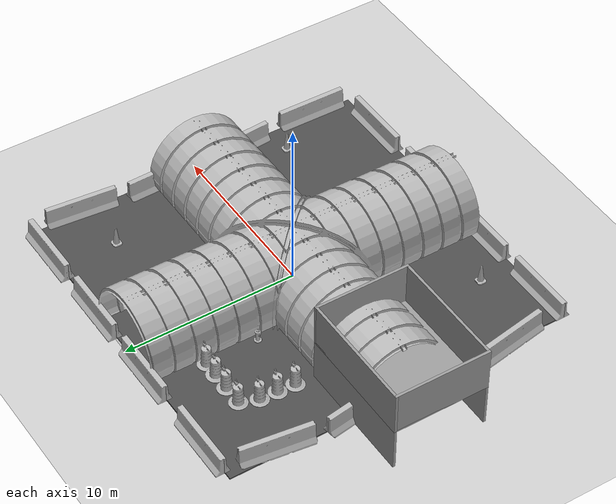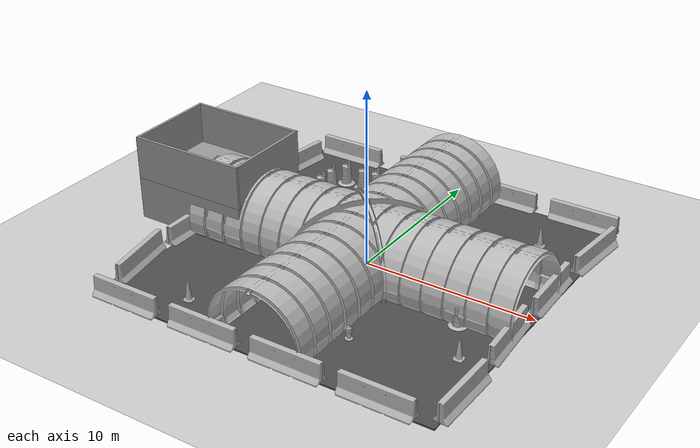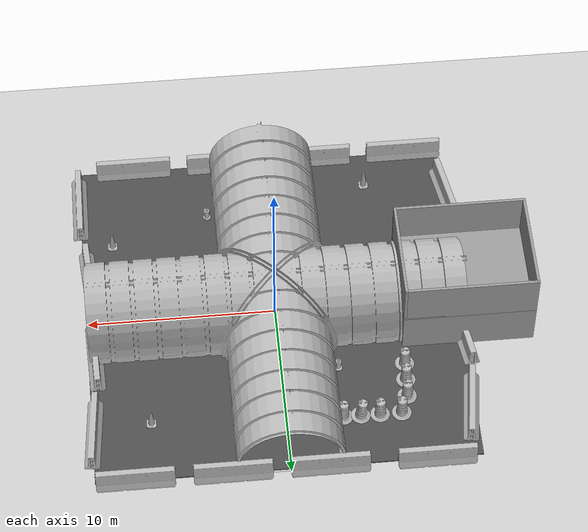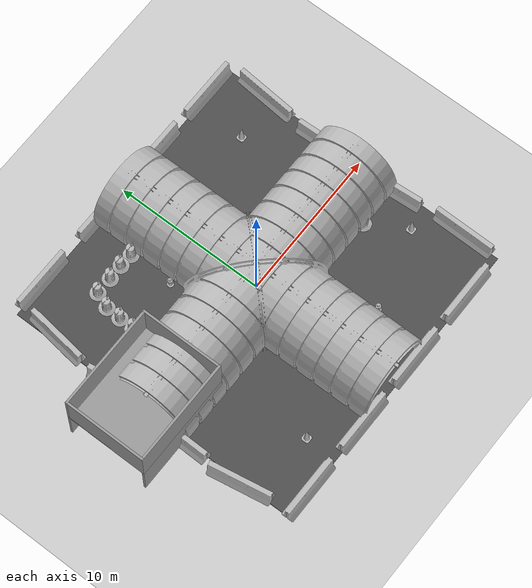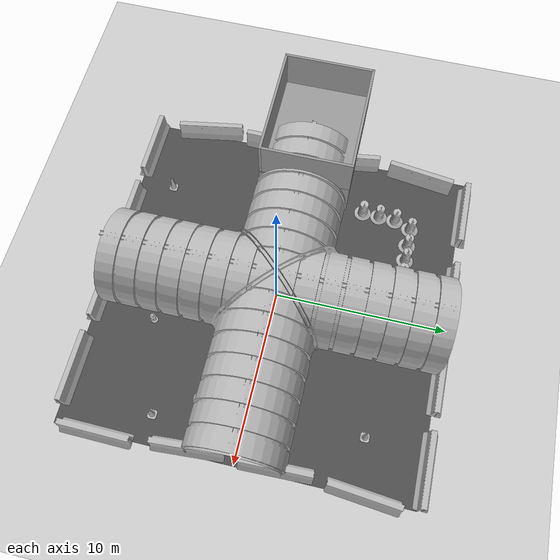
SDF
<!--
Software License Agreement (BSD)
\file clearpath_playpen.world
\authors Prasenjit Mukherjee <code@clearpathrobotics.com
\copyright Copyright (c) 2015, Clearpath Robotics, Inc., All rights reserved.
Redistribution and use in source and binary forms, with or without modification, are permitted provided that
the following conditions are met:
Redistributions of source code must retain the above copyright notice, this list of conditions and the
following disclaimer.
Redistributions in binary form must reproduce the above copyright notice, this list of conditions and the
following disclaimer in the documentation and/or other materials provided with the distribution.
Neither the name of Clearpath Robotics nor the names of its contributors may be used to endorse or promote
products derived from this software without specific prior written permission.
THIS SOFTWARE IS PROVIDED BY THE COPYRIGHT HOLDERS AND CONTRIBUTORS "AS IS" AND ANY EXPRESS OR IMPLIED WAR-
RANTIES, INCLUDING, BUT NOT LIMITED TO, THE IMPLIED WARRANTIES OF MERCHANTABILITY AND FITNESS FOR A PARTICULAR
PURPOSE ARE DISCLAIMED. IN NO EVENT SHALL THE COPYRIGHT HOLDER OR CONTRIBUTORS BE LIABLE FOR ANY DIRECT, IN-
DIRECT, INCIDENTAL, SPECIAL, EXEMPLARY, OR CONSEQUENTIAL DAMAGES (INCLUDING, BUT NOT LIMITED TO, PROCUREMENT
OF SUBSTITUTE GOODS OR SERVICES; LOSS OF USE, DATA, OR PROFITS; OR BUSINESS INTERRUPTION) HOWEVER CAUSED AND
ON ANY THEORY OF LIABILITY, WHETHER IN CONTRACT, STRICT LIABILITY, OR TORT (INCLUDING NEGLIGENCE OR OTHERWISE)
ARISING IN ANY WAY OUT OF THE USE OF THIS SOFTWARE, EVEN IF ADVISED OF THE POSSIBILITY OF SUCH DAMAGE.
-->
<sdf version="1.4">
 <world name="default">
  <light name="sun" type="directional">
   <pose>0 0 10 0 -0 0</pose>
   <diffuse>0.8 0.8 0.8 1</diffuse>
   <specular>0.2 0.2 0.2 1</specular>
   <attenuation>
    <range>1000</range>
    <constant>0.9</constant>
    <linear>0.01</linear>
    <quadratic>0.001</quadratic>
   </attenuation>
   <direction>-0.5 0.1 -0.9</direction>
  </light>
  <include><uri>model://tunnel_tile_1</uri></include>
  <include><uri>model://entrance</uri><pose>-10 0 0 0 0 0</pose></include>
  <model name="ground_plane">
   <static>1</static>
   <link name="link">
    <collision name="collision">
     <geometry><plane><normal>0 0 1</normal><size>100 100</size></plane></geometry>
     <surface><friction><ode><mu>100</mu><mu2>50</mu2></ode></friction></surface>
    </collision>
    <visual name="visual">
     <cast_shadows>0</cast_shadows>
     <geometry><plane><normal>0 0 1</normal><size>100 100</size></plane></geometry>
     <material>
      <script><uri>file://media/materials/scripts/gazebo.material</uri><name>Gazebo/Grey</name></script>
     </material>
    </visual>
    <velocity_decay><linear>0</linear><angular>0</angular></velocity_decay>
   </link>
  </model>
  <physics type="ode">
   <max_step_size>0.01</max_step_size>
   <real_time_factor>1</real_time_factor>
   <real_time_update_rate>100</real_time_update_rate>
   <gravity>0 0 -9.8</gravity>
  </physics>
  <scene><ambient>0.4 0.4 0.4 1</ambient><background>0.7 0.7 0.7 1</background><shadows>1</shadows></scene>
  <model name="jersey_barrier">
   <static>1</static>
   <link name="link">
    <visual name="visual">
     <geometry><mesh><uri>model://jersey_barrier/meshes/jersey_barrier.dae</uri></mesh></geometry>
    </visual>
    <collision name="upright">
     <pose>0 0 0.5715 0 -0 0</pose>
     <geometry><box><size>4.06542 0.3063 1.143</size></box></geometry>
    </collision>
    <collision name="base">
     <pose>0 0 0.032258 0 -0 0</pose>
     <geometry><box><size>4.06542 0.8107 0.064516</size></box></geometry>
    </collision>
    <collision name="base2">
     <pose>0 0 0.1 0 -0 0</pose>
     <geometry><box><size>4.06542 0.65 0.1</size></box></geometry>
    </collision>
    <collision name="base3">
     <pose>0 0 0.2 0 -0 0</pose>
     <geometry><box><size>4.06542 0.5 0.1</size></box></geometry>
    </collision>
    <collision name="left-angle">
     <pose>0 -0.224 0.2401 0.9 -0 0</pose>
     <geometry><box><size>4.06542 0.5 0.064516</size></box></geometry>
    </collision>
    <collision name="right-angle">
     <pose>0 0.224 0.2401 -0.9 0 0</pose>
     <geometry><box><size>4.06542 0.5 0.064516</size></box></geometry>
    </collision>
    <velocity_decay><linear>0</linear><angular>0</angular></velocity_decay>
   </link>
   <pose>-8 -10 0 0 -0 0</pose>
  </model>
  <model name="jersey_barrier_0">
   <static>1</static>
   <link name="link">
    <visual name="visual">
     <geometry><mesh><uri>model://jersey_barrier/meshes/jersey_barrier.dae</uri></mesh></geometry>
    </visual>
    <collision name="upright">
     <pose>0 0 0.5715 0 -0 0</pose>
     <geometry><box><size>4.06542 0.3063 1.143</size></box></geometry>
    </collision>
    <collision name="base">
     <pose>0 0 0.032258 0 -0 0</pose>
     <geometry><box><size>4.06542 0.8107 0.064516</size></box></geometry>
    </collision>
    <collision name="base2">
     <pose>0 0 0.1 0 -0 0</pose>
     <geometry><box><size>4.06542 0.65 0.1</size></box></geometry>
    </collision>
    <collision name="base3">
     <pose>0 0 0.2 0 -0 0</pose>
     <geometry><box><size>4.06542 0.5 0.1</size></box></geometry>
    </collision>
    <collision name="left-angle">
     <pose>0 -0.224 0.2401 0.9 -0 0</pose>
     <geometry><box><size>4.06542 0.5 0.064516</size></box></geometry>
    </collision>
    <collision name="right-angle">
     <pose>0 0.224 0.2401 -0.9 0 0</pose>
     <geometry><box><size>4.06542 0.5 0.064516</size></box></geometry>
    </collision>
    <velocity_decay><linear>0</linear><angular>0</angular></velocity_decay>
   </link>
   <pose>-3 -10 0 0 -0 0</pose>
  </model>
  <model name="jersey_barrier_1">
   <static>1</static>
   <link name="link">
    <visual name="visual">
     <geometry><mesh><uri>model://jersey_barrier/meshes/jersey_barrier.dae</uri></mesh></geometry>
    </visual>
    <collision name="upright">
     <pose>0 0 0.5715 0 -0 0</pose>
     <geometry><box><size>4.06542 0.3063 1.143</size></box></geometry>
    </collision>
    <collision name="base">
     <pose>0 0 0.032258 0 -0 0</pose>
     <geometry><box><size>4.06542 0.8107 0.064516</size></box></geometry>
    </collision>
    <collision name="base2">
     <pose>0 0 0.1 0 -0 0</pose>
     <geometry><box><size>4.06542 0.65 0.1</size></box></geometry>
    </collision>
    <collision name="base3">
     <pose>0 0 0.2 0 -0 0</pose>
     <geometry><box><size>4.06542 0.5 0.1</size></box></geometry>
    </collision>
    <collision name="left-angle">
     <pose>0 -0.224 0.2401 0.9 -0 0</pose>
     <geometry><box><size>4.06542 0.5 0.064516</size></box></geometry>
    </collision>
    <collision name="right-angle">
     <pose>0 0.224 0.2401 -0.9 0 0</pose>
     <geometry><box><size>4.06542 0.5 0.064516</size></box></geometry>
    </collision>
    <velocity_decay><linear>0</linear><angular>0</angular></velocity_decay>
   </link>
   <pose>2 -10 0 0 -0 0</pose>
  </model>
  <model name="jersey_barrier_2">
   <static>1</static>
   <link name="link">
    <visual name="visual">
     <geometry><mesh><uri>model://jersey_barrier/meshes/jersey_barrier.dae</uri></mesh></geometry>
    </visual>
    <collision name="upright">
     <pose>0 0 0.5715 0 -0 0</pose>
     <geometry><box><size>4.06542 0.3063 1.143</size></box></geometry>
    </collision>
    <collision name="base">
     <pose>0 0 0.032258 0 -0 0</pose>
     <geometry><box><size>4.06542 0.8107 0.064516</size></box></geometry>
    </collision>
    <collision name="base2">
     <pose>0 0 0.1 0 -0 0</pose>
     <geometry><box><size>4.06542 0.65 0.1</size></box></geometry>
    </collision>
    <collision name="base3">
     <pose>0 0 0.2 0 -0 0</pose>
     <geometry><box><size>4.06542 0.5 0.1</size></box></geometry>
    </collision>
    <collision name="left-angle">
     <pose>0 -0.224 0.2401 0.9 -0 0</pose>
     <geometry><box><size>4.06542 0.5 0.064516</size></box></geometry>
    </collision>
    <collision name="right-angle">
     <pose>0 0.224 0.2401 -0.9 0 0</pose>
     <geometry><box><size>4.06542 0.5 0.064516</size></box></geometry>
    </collision>
    <velocity_decay><linear>0</linear><angular>0</angular></velocity_decay>
   </link>
   <pose>7 -10 0 0 -0 0</pose>
  </model>
  <model name="jersey_barrier_3">
   <static>1</static>
   <link name="link">
    <visual name="visual">
     <geometry><mesh><uri>model://jersey_barrier/meshes/jersey_barrier.dae</uri></mesh></geometry>
    </visual>
    <collision name="upright">
     <pose>0 0 0.5715 0 -0 0</pose>
     <geometry><box><size>4.06542 0.3063 1.143</size></box></geometry>
    </collision>
    <collision name="base">
     <pose>0 0 0.032258 0 -0 0</pose>
     <geometry><box><size>4.06542 0.8107 0.064516</size></box></geometry>
    </collision>
    <collision name="base2">
     <pose>0 0 0.1 0 -0 0</pose>
     <geometry><box><size>4.06542 0.65 0.1</size></box></geometry>
    </collision>
    <collision name="base3">
     <pose>0 0 0.2 0 -0 0</pose>
     <geometry><box><size>4.06542 0.5 0.1</size></box></geometry>
    </collision>
    <collision name="left-angle">
     <pose>0 -0.224 0.2401 0.9 -0 0</pose>
     <geometry><box><size>4.06542 0.5 0.064516</size></box></geometry>
    </collision>
    <collision name="right-angle">
     <pose>0 0.224 0.2401 -0.9 0 0</pose>
     <geometry><box><size>4.06542 0.5 0.064516</size></box></geometry>
    </collision>
    <velocity_decay><linear>0</linear><angular>0</angular></velocity_decay>
   </link>
   <pose>-7.50675 10 0 0 -0 0</pose>
  </model>
  <model name="jersey_barrier_4">
   <static>1</static>
   <link name="link">
    <visual name="visual">
     <geometry><mesh><uri>model://jersey_barrier/meshes/jersey_barrier.dae</uri></mesh></geometry>
    </visual>
    <collision name="upright">
     <pose>0 0 0.5715 0 -0 0</pose>
     <geometry><box><size>4.06542 0.3063 1.143</size></box></geometry>
    </collision>
    <collision name="base">
     <pose>0 0 0.032258 0 -0 0</pose>
     <geometry><box><size>4.06542 0.8107 0.064516</size></box></geometry>
    </collision>
    <collision name="base2">
     <pose>0 0 0.1 0 -0 0</pose>
     <geometry><box><size>4.06542 0.65 0.1</size></box></geometry>
    </collision>
    <collision name="base3">
     <pose>0 0 0.2 0 -0 0</pose>
     <geometry><box><size>4.06542 0.5 0.1</size></box></geometry>
    </collision>
    <collision name="left-angle">
     <pose>0 -0.224 0.2401 0.9 -0 0</pose>
     <geometry><box><size>4.06542 0.5 0.064516</size></box></geometry>
    </collision>
    <collision name="right-angle">
     <pose>0 0.224 0.2401 -0.9 0 0</pose>
     <geometry><box><size>4.06542 0.5 0.064516</size></box></geometry>
    </collision>
    <velocity_decay><linear>0</linear><angular>0</angular></velocity_decay>
   </link>
   <pose>-2 10 0 0 -0 0</pose>
  </model>
  <model name="jersey_barrier_5">
   <static>1</static>
   <link name="link">
    <visual name="visual">
     <geometry><mesh><uri>model://jersey_barrier/meshes/jersey_barrier.dae</uri></mesh></geometry>
    </visual>
    <collision name="upright">
     <pose>0 0 0.5715 0 -0 0</pose>
     <geometry><box><size>4.06542 0.3063 1.143</size></box></geometry>
    </collision>
    <collision name="base">
     <pose>0 0 0.032258 0 -0 0</pose>
     <geometry><box><size>4.06542 0.8107 0.064516</size></box></geometry>
    </collision>
    <collision name="base2">
     <pose>0 0 0.1 0 -0 0</pose>
     <geometry><box><size>4.06542 0.65 0.1</size></box></geometry>
    </collision>
    <collision name="base3">
     <pose>0 0 0.2 0 -0 0</pose>
     <geometry><box><size>4.06542 0.5 0.1</size></box></geometry>
    </collision>
    <collision name="left-angle">
     <pose>0 -0.224 0.2401 0.9 -0 0</pose>
     <geometry><box><size>4.06542 0.5 0.064516</size></box></geometry>
    </collision>
    <collision name="right-angle">
     <pose>0 0.224 0.2401 -0.9 0 0</pose>
     <geometry><box><size>4.06542 0.5 0.064516</size></box></geometry>
    </collision>
    <velocity_decay><linear>0</linear><angular>0</angular></velocity_decay>
   </link>
   <pose>3 10 0 0 -0 0</pose>
  </model>
  <model name="jersey_barrier_6">
   <static>1</static>
   <link name="link">
    <visual name="visual">
     <geometry><mesh><uri>model://jersey_barrier/meshes/jersey_barrier.dae</uri></mesh></geometry>
    </visual>
    <collision name="upright">
     <pose>0 0 0.5715 0 -0 0</pose>
     <geometry><box><size>4.06542 0.3063 1.143</size></box></geometry>
    </collision>
    <collision name="base">
     <pose>0 0 0.032258 0 -0 0</pose>
     <geometry><box><size>4.06542 0.8107 0.064516</size></box></geometry>
    </collision>
    <collision name="base2">
     <pose>0 0 0.1 0 -0 0</pose>
     <geometry><box><size>4.06542 0.65 0.1</size></box></geometry>
    </collision>
    <collision name="base3">
     <pose>0 0 0.2 0 -0 0</pose>
     <geometry><box><size>4.06542 0.5 0.1</size></box></geometry>
    </collision>
    <collision name="left-angle">
     <pose>0 -0.224 0.2401 0.9 -0 0</pose>
     <geometry><box><size>4.06542 0.5 0.064516</size></box></geometry>
    </collision>
    <collision name="right-angle">
     <pose>0 0.224 0.2401 -0.9 0 0</pose>
     <geometry><box><size>4.06542 0.5 0.064516</size></box></geometry>
    </collision>
    <velocity_decay><linear>0</linear><angular>0</angular></velocity_decay>
   </link>
   <pose>8 10 0 0 -0 0</pose>
  </model>
  <model name="jersey_barrier_7">
   <static>1</static>
   <link name="link">
    <visual name="visual">
     <geometry><mesh><uri>model://jersey_barrier/meshes/jersey_barrier.dae</uri></mesh></geometry>
    </visual>
    <collision name="upright">
     <pose>0 0 0.5715 0 -0 0</pose>
     <geometry><box><size>4.06542 0.3063 1.143</size></box></geometry>
    </collision>
    <collision name="base">
     <pose>0 0 0.032258 0 -0 0</pose>
     <geometry><box><size>4.06542 0.8107 0.064516</size></box></geometry>
    </collision>
    <collision name="base2">
     <pose>0 0 0.1 0 -0 0</pose>
     <geometry><box><size>4.06542 0.65 0.1</size></box></geometry>
    </collision>
    <collision name="base3">
     <pose>0 0 0.2 0 -0 0</pose>
     <geometry><box><size>4.06542 0.5 0.1</size></box></geometry>
    </collision>
    <collision name="left-angle">
     <pose>0 -0.224 0.2401 0.9 -0 0</pose>
     <geometry><box><size>4.06542 0.5 0.064516</size></box></geometry>
    </collision>
    <collision name="right-angle">
     <pose>0 0.224 0.2401 -0.9 0 0</pose>
     <geometry><box><size>4.06542 0.5 0.064516</size></box></geometry>
    </collision>
    <velocity_decay><linear>0</linear><angular>0</angular></velocity_decay>
   </link>
   <pose>9.74902 -2.57759 0 0 -0 1.64</pose>
  </model>
  <model name="jersey_barrier_8">
   <static>1</static>
   <link name="link">
    <visual name="visual">
     <geometry><mesh><uri>model://jersey_barrier/meshes/jersey_barrier.dae</uri></mesh></geometry>
    </visual>
    <collision name="upright">
     <pose>0 0 0.5715 0 -0 0</pose>
     <geometry><box><size>4.06542 0.3063 1.143</size></box></geometry>
    </collision>
    <collision name="base">
     <pose>0 0 0.032258 0 -0 0</pose>
     <geometry><box><size>4.06542 0.8107 0.064516</size></box></geometry>
    </collision>
    <collision name="base2">
     <pose>0 0 0.1 0 -0 0</pose>
     <geometry><box><size>4.06542 0.65 0.1</size></box></geometry>
    </collision>
    <collision name="base3">
     <pose>0 0 0.2 0 -0 0</pose>
     <geometry><box><size>4.06542 0.5 0.1</size></box></geometry>
    </collision>
    <collision name="left-angle">
     <pose>0 -0.224 0.2401 0.9 -0 0</pose>
     <geometry><box><size>4.06542 0.5 0.064516</size></box></geometry>
    </collision>
    <collision name="right-angle">
     <pose>0 0.224 0.2401 -0.9 0 0</pose>
     <geometry><box><size>4.06542 0.5 0.064516</size></box></geometry>
    </collision>
    <velocity_decay><linear>0</linear><angular>0</angular></velocity_decay>
   </link>
   <pose>9.70141 2.24369 0 0 -0 1.6</pose>
  </model>
  <model name="jersey_barrier_9">
   <static>1</static>
   <link name="link">
    <visual name="visual">
     <geometry><mesh><uri>model://jersey_barrier/meshes/jersey_barrier.dae</uri></mesh></geometry>
    </visual>
    <collision name="upright">
     <pose>0 0 0.5715 0 -0 0</pose>
     <geometry><box><size>4.06542 0.3063 1.143</size></box></geometry>
    </collision>
    <collision name="base">
     <pose>0 0 0.032258 0 -0 0</pose>
     <geometry><box><size>4.06542 0.8107 0.064516</size></box></geometry>
    </collision>
    <collision name="base2">
     <pose>0 0 0.1 0 -0 0</pose>
     <geometry><box><size>4.06542 0.65 0.1</size></box></geometry>
    </collision>
    <collision name="base3">
     <pose>0 0 0.2 0 -0 0</pose>
     <geometry><box><size>4.06542 0.5 0.1</size></box></geometry>
    </collision>
    <collision name="left-angle">
     <pose>0 -0.224 0.2401 0.9 -0 0</pose>
     <geometry><box><size>4.06542 0.5 0.064516</size></box></geometry>
    </collision>
    <collision name="right-angle">
     <pose>0 0.224 0.2401 -0.9 0 0</pose>
     <geometry><box><size>4.06542 0.5 0.064516</size></box></geometry>
    </collision>
    <velocity_decay><linear>0</linear><angular>0</angular></velocity_decay>
   </link>
   <pose>-10.0607 -6.69856 0 0 0 -1.4</pose>
  </model>
  <model name="jersey_barrier_10">
   <static>1</static>
   <link name="link">
    <visual name="visual">
     <geometry><mesh><uri>model://jersey_barrier/meshes/jersey_barrier.dae</uri></mesh></geometry>
    </visual>
    <collision name="upright">
     <pose>0 0 0.5715 0 -0 0</pose>
     <geometry><box><size>4.06542 0.3063 1.143</size></box></geometry>
    </collision>
    <collision name="base">
     <pose>0 0 0.032258 0 -0 0</pose>
     <geometry><box><size>4.06542 0.8107 0.064516</size></box></geometry>
    </collision>
    <collision name="base2">
     <pose>0 0 0.1 0 -0 0</pose>
     <geometry><box><size>4.06542 0.65 0.1</size></box></geometry>
    </collision>
    <collision name="base3">
     <pose>0 0 0.2 0 -0 0</pose>
     <geometry><box><size>4.06542 0.5 0.1</size></box></geometry>
    </collision>
    <collision name="left-angle">
     <pose>0 -0.224 0.2401 0.9 -0 0</pose>
     <geometry><box><size>4.06542 0.5 0.064516</size></box></geometry>
    </collision>
    <collision name="right-angle">
     <pose>0 0.224 0.2401 -0.9 0 0</pose>
     <geometry><box><size>4.06542 0.5 0.064516</size></box></geometry>
    </collision>
    <velocity_decay><linear>0</linear><angular>0</angular></velocity_decay>
   </link>
   <pose>-10.0774 -2.27159 0 0 -0 1.56</pose>
  </model>
  <model name="jersey_barrier_11">
   <static>1</static>
   <link name="link">
    <visual name="visual">
     <geometry><mesh><uri>model://jersey_barrier/meshes/jersey_barrier.dae</uri></mesh></geometry>
    </visual>
    <collision name="upright">
     <pose>0 0 0.5715 0 -0 0</pose>
     <geometry><box><size>4.06542 0.3063 1.143</size></box></geometry>
    </collision>
    <collision name="base">
     <pose>0 0 0.032258 0 -0 0</pose>
     <geometry><box><size>4.06542 0.8107 0.064516</size></box></geometry>
    </collision>
    <collision name="base2">
     <pose>0 0 0.1 0 -0 0</pose>
     <geometry><box><size>4.06542 0.65 0.1</size></box></geometry>
    </collision>
    <collision name="base3">
     <pose>0 0 0.2 0 -0 0</pose>
     <geometry><box><size>4.06542 0.5 0.1</size></box></geometry>
    </collision>
    <collision name="left-angle">
     <pose>0 -0.224 0.2401 0.9 -0 0</pose>
     <geometry><box><size>4.06542 0.5 0.064516</size></box></geometry>
    </collision>
    <collision name="right-angle">
     <pose>0 0.224 0.2401 -0.9 0 0</pose>
     <geometry><box><size>4.06542 0.5 0.064516</size></box></geometry>
    </collision>
    <velocity_decay><linear>0</linear><angular>0</angular></velocity_decay>
   </link>
   <pose>-9.77013 2.34791 0 0 -0 1.72</pose>
  </model>
  <model name="jersey_barrier_12">
   <static>1</static>
   <link name="link">
    <visual name="visual">
     <geometry><mesh><uri>model://jersey_barrier/meshes/jersey_barrier.dae</uri></mesh></geometry>
    </visual>
    <collision name="upright">
     <pose>0 0 0.5715 0 -0 0</pose>
     <geometry><box><size>4.06542 0.3063 1.143</size></box></geometry>
    </collision>
    <collision name="base">
     <pose>0 0 0.032258 0 -0 0</pose>
     <geometry><box><size>4.06542 0.8107 0.064516</size></box></geometry>
    </collision>
    <collision name="base2">
     <pose>0 0 0.1 0 -0 0</pose>
     <geometry><box><size>4.06542 0.65 0.1</size></box></geometry>
    </collision>
    <collision name="base3">
     <pose>0 0 0.2 0 -0 0</pose>
     <geometry><box><size>4.06542 0.5 0.1</size></box></geometry>
    </collision>
    <collision name="left-angle">
     <pose>0 -0.224 0.2401 0.9 -0 0</pose>
     <geometry><box><size>4.06542 0.5 0.064516</size></box></geometry>
    </collision>
    <collision name="right-angle">
     <pose>0 0.224 0.2401 -0.9 0 0</pose>
     <geometry><box><size>4.06542 0.5 0.064516</size></box></geometry>
    </collision>
    <velocity_decay><linear>0</linear><angular>0</angular></velocity_decay>
   </link>
   <pose>10.0879 -7.62159 0 0 -0 1.56</pose>
  </model>
  <model name="jersey_barrier_13">
   <static>1</static>
   <link name="link">
    <visual name="visual">
     <geometry><mesh><uri>model://jersey_barrier/meshes/jersey_barrier.dae</uri></mesh></geometry>
    </visual>
    <collision name="upright">
     <pose>0 0 0.5715 0 -0 0</pose>
     <geometry><box><size>4.06542 0.3063 1.143</size></box></geometry>
    </collision>
    <collision name="base">
     <pose>0 0 0.032258 0 -0 0</pose>
     <geometry><box><size>4.06542 0.8107 0.064516</size></box></geometry>
    </collision>
    <collision name="base2">
     <pose>0 0 0.1 0 -0 0</pose>
     <geometry><box><size>4.06542 0.65 0.1</size></box></geometry>
    </collision>
    <collision name="base3">
     <pose>0 0 0.2 0 -0 0</pose>
     <geometry><box><size>4.06542 0.5 0.1</size></box></geometry>
    </collision>
    <collision name="left-angle">
     <pose>0 -0.224 0.2401 0.9 -0 0</pose>
     <geometry><box><size>4.06542 0.5 0.064516</size></box></geometry>
    </collision>
    <collision name="right-angle">
     <pose>0 0.224 0.2401 -0.9 0 0</pose>
     <geometry><box><size>4.06542 0.5 0.064516</size></box></geometry>
    </collision>
    <velocity_decay><linear>0</linear><angular>0</angular></velocity_decay>
   </link>
   <pose>10 7 0 0 -0 1.48</pose>
  </model>
  <model name="jersey_barrier_14">
   <static>1</static>
   <link name="link">
    <visual name="visual">
     <geometry><mesh><uri>model://jersey_barrier/meshes/jersey_barrier.dae</uri></mesh></geometry>
    </visual>
    <collision name="upright">
     <pose>0 0 0.5715 0 -0 0</pose>
     <geometry><box><size>4.06542 0.3063 1.143</size></box></geometry>
    </collision>
    <collision name="base">
     <pose>0 0 0.032258 0 -0 0</pose>
     <geometry><box><size>4.06542 0.8107 0.064516</size></box></geometry>
    </collision>
    <collision name="base2">
     <pose>0 0 0.1 0 -0 0</pose>
     <geometry><box><size>4.06542 0.65 0.1</size></box></geometry>
    </collision>
    <collision name="base3">
     <pose>0 0 0.2 0 -0 0</pose>
     <geometry><box><size>4.06542 0.5 0.1</size></box></geometry>
    </collision>
    <collision name="left-angle">
     <pose>0 -0.224 0.2401 0.9 -0 0</pose>
     <geometry><box><size>4.06542 0.5 0.064516</size></box></geometry>
    </collision>
    <collision name="right-angle">
     <pose>0 0.224 0.2401 -0.9 0 0</pose>
     <geometry><box><size>4.06542 0.5 0.064516</size></box></geometry>
    </collision>
    <velocity_decay><linear>0</linear><angular>0</angular></velocity_decay>
   </link>
   <pose>-9.64482 7.05946 0 0 -0 1.44</pose>
  </model>
  <model name="fire_hydrant">
   <static>1</static>
   <link name="link">
    <collision name="collision">
     <geometry><mesh><uri>model://fire_hydrant/meshes/fire_hydrant.dae</uri></mesh></geometry>
    </collision>
    <visual name="visual">
     <geometry><mesh><uri>model://fire_hydrant/meshes/fire_hydrant.dae</uri></mesh></geometry>
    </visual>
    <velocity_decay><linear>0</linear><angular>0</angular></velocity_decay>
   </link>
   <pose>3.18024 -6.51118 0 0 -0 0</pose>
  </model>
  <model name="fire_hydrant_0">
   <static>1</static>
   <link name="link">
    <collision name="collision">
     <geometry><mesh><uri>model://fire_hydrant/meshes/fire_hydrant.dae</uri></mesh></geometry>
    </collision>
    <visual name="visual">
     <geometry><mesh><uri>model://fire_hydrant/meshes/fire_hydrant.dae</uri></mesh></geometry>
    </visual>
    <velocity_decay><linear>0</linear><angular>0</angular></velocity_decay>
   </link>
   <pose>-3 4 0 0 -0 0</pose>
  </model>
  <model name="fire_hydrant_1">
   <static>1</static>
   <link name="link">
    <collision name="collision">
     <geometry><mesh><uri>model://fire_hydrant/meshes/fire_hydrant.dae</uri></mesh></geometry>
    </collision>
    <visual name="visual">
     <geometry><mesh><uri>model://fire_hydrant/meshes/fire_hydrant.dae</uri></mesh></geometry>
    </visual>
    <velocity_decay><linear>0</linear><angular>0</angular></velocity_decay>
   </link>
   <pose>-7.90686 -2.41363 0 0 -0 0</pose>
  </model>
  <model name="jersey_barrier_15">
   <static>1</static>
   <link name="link">
    <visual name="visual">
     <geometry><mesh><uri>model://jersey_barrier/meshes/jersey_barrier.dae</uri></mesh></geometry>
    </visual>
    <collision name="upright">
     <pose>0 0 0.5715 0 -0 0</pose>
     <geometry><box><size>4.06542 0.3063 1.143</size></box></geometry>
    </collision>
    <collision name="base">
     <pose>0 0 0.032258 0 -0 0</pose>
     <geometry><box><size>4.06542 0.8107 0.064516</size></box></geometry>
    </collision>
    <collision name="base2">
     <pose>0 0 0.1 0 -0 0</pose>
     <geometry><box><size>4.06542 0.65 0.1</size></box></geometry>
    </collision>
    <collision name="base3">
     <pose>0 0 0.2 0 -0 0</pose>
     <geometry><box><size>4.06542 0.5 0.1</size></box></geometry>
    </collision>
    <collision name="left-angle">
     <pose>0 -0.224 0.2401 0.9 -0 0</pose>
     <geometry><box><size>4.06542 0.5 0.064516</size></box></geometry>
    </collision>
    <collision name="right-angle">
     <pose>0 0.224 0.2401 -0.9 0 0</pose>
     <geometry><box><size>4.06542 0.5 0.064516</size></box></geometry>
    </collision>
    <velocity_decay><linear>0</linear><angular>0</angular></velocity_decay>
   </link>
   <pose>2.45495 0 0 0 -0 2.36</pose>
  </model>
  <model name="Construction Cone">
   <link name="link">
    <collision name="collision">
     <geometry>
      <mesh><scale>10 10 10</scale><uri>model://construction_cone/meshes/construction_cone.dae</uri></mesh>
     </geometry>
    </collision>
    <visual name="visual">
     <geometry>
      <mesh><scale>10 10 10</scale><uri>model://construction_cone/meshes/construction_cone.dae</uri></mesh>
     </geometry>
    </visual>
    <velocity_decay><linear>0</linear><angular>0</angular></velocity_decay>
    <inertial>
     <inertia><ixx>1</ixx><ixy>0</ixy><ixz>0</ixz><iyy>1</iyy><iyz>0</iyz><izz>1</izz></inertia>
     <mass>1</mass>
    </inertial>
   </link>
   <pose>-5.59121 -8 0.05 0 -1e-06 0</pose>
   <static>0</static>
  </model>
  <model name="Construction Barrel">
   <link name="link">
    <inertial>
     <pose>0 0 0.4 0 -0 0</pose>
     <mass>500</mass>
     <inertia><ixx>51.2096</ixx><iyy>51.2096</iyy><izz>25</izz><ixy>0</ixy><ixz>0</ixz><iyz>0</iyz></inertia>
    </inertial>
    <collision name="collision">
     <geometry><mesh><uri>model://construction_barrel/meshes/construction_barrel.dae</uri></mesh></geometry>
    </collision>
    <visual name="visual">
     <geometry><mesh><uri>model://construction_barrel/meshes/construction_barrel.dae</uri></mesh></geometry>
    </visual>
    <velocity_decay><linear>0</linear><angular>0</angular></velocity_decay>
   </link>
   <pose>7.00006 -2.54635 0.049999 4e-06 -0 0.000401</pose>
   <static>0</static>
  </model>
  <model name="Construction Cone_0">
   <link name="link">
    <collision name="collision">
     <geometry>
      <mesh><scale>10 10 10</scale><uri>model://construction_cone/meshes/construction_cone.dae</uri></mesh>
     </geometry>
    </collision>
    <visual name="visual">
     <geometry>
      <mesh><scale>10 10 10</scale><uri>model://construction_cone/meshes/construction_cone.dae</uri></mesh>
     </geometry>
    </visual>
    <velocity_decay><linear>0</linear><angular>0</angular></velocity_decay>
    <inertial>
     <inertia><ixx>1</ixx><ixy>0</ixy><ixz>0</ixz><iyy>1</iyy><iyz>0</iyz><izz>1</izz></inertia>
     <mass>1</mass>
    </inertial>
   </link>
   <pose>6.99685 6.55732 0.05 -8.27181e-25 1e-06 -0.007012</pose>
   <static>0</static>
  </model>
  <model name="Construction Barrel_0">
   <link name="link">
    <inertial>
     <pose>0 0 0.4 0 -0 0</pose>
     <mass>500</mass>
     <inertia><ixx>51.2096</ixx><iyy>51.2096</iyy><izz>25</izz><ixy>0</ixy><ixz>0</ixz><iyz>0</iyz></inertia>
    </inertial>
    <collision name="collision">
     <geometry><mesh><uri>model://construction_barrel/meshes/construction_barrel.dae</uri></mesh></geometry>
    </collision>
    <visual name="visual">
     <geometry><mesh><uri>model://construction_barrel/meshes/construction_barrel.dae</uri></mesh></geometry>
    </visual>
    <velocity_decay><linear>0</linear><angular>0</angular></velocity_decay>
   </link>
   <pose>1.45178 -6.51128 0.049999 -1e-06 -3e-06 3.8e-05</pose>
   <static>0</static>
  </model>
  <model name="asphalt_plane">
   <static>1</static>
   <link name="link">
    <collision name="collision"><geometry><box><size>20 20 0.1</size></box></geometry></collision>
    <visual name="visual">
     <cast_shadows>0</cast_shadows>
     <geometry><box><size>20 20 0.1</size></box></geometry>
     <material>
      <script>
       <uri>model://asphalt_plane/materials/scripts</uri>
       <uri>model://asphalt_plane/materials/textures</uri>
       <name>vrc/asphalt</name>
      </script>
     </material>
    </visual>
    <velocity_decay><linear>0</linear><angular>0</angular></velocity_decay>
   </link>
   <pose>0.076733 -0.110379 0 0 -0 0</pose>
  </model>
  <model name="Construction Barrel_1">
   <link name="link">
    <inertial>
     <pose>0 0 0.4 0 -0 0</pose>
     <mass>500</mass>
     <inertia><ixx>51.2096</ixx><iyy>51.2096</iyy><izz>25</izz><ixy>0</ixy><ixz>0</ixz><iyz>0</iyz></inertia>
    </inertial>
    <collision name="collision">
     <geometry><mesh><uri>model://construction_barrel/meshes/construction_barrel.dae</uri></mesh></geometry>
    </collision>
    <visual name="visual">
     <geometry><mesh><uri>model://construction_barrel/meshes/construction_barrel.dae</uri></mesh></geometry>
    </visual>
    <velocity_decay><linear>0</linear><angular>0</angular></velocity_decay>
   </link>
   <pose>-6.50482 3.9826 0.049999 4e-06 1e-06 -0.009616</pose>
   <static>0</static>
  </model>
  <model name="Construction Barrel_2">
   <link name="link">
    <inertial>
     <pose>0 0 0.4 0 -0 0</pose>
     <mass>500</mass>
     <inertia><ixx>51.2096</ixx><iyy>51.2096</iyy><izz>25</izz><ixy>0</ixy><ixz>0</ixz><iyz>0</iyz></inertia>
    </inertial>
    <collision name="collision">
     <geometry><mesh><uri>model://construction_barrel/meshes/construction_barrel.dae</uri></mesh></geometry>
    </collision>
    <visual name="visual">
     <geometry><mesh><uri>model://construction_barrel/meshes/construction_barrel.dae</uri></mesh></geometry>
    </visual>
    <velocity_decay><linear>0</linear><angular>0</angular></velocity_decay>
   </link>
   <pose>-6.45065 4.99639 0.049999 -1e-06 -2e-06 0.064981</pose>
   <static>0</static>
  </model>
  <model name="Construction Barrel_3">
   <link name="link">
    <inertial>
     <pose>0 0 0.4 0 -0 0</pose>
     <mass>500</mass>
     <inertia><ixx>51.2096</ixx><iyy>51.2096</iyy><izz>25</izz><ixy>0</ixy><ixz>0</ixz><iyz>0</iyz></inertia>
    </inertial>
    <collision name="collision">
     <geometry><mesh><uri>model://construction_barrel/meshes/construction_barrel.dae</uri></mesh></geometry>
    </collision>
    <visual name="visual">
     <geometry><mesh><uri>model://construction_barrel/meshes/construction_barrel.dae</uri></mesh></geometry>
    </visual>
    <velocity_decay><linear>0</linear><angular>0</angular></velocity_decay>
   </link>
   <pose>-6.40174 6.01109 0.05 -1e-06 -1e-06 -0.120729</pose>
   <static>0</static>
  </model>
  <model name="Construction Barrel_4">
   <link name="link">
    <inertial>
     <pose>0 0 0.4 0 -0 0</pose>
     <mass>500</mass>
     <inertia><ixx>51.2096</ixx><iyy>51.2096</iyy><izz>25</izz><ixy>0</ixy><ixz>0</ixz><iyz>0</iyz></inertia>
    </inertial>
    <collision name="collision">
     <geometry><mesh><uri>model://construction_barrel/meshes/construction_barrel.dae</uri></mesh></geometry>
    </collision>
    <visual name="visual">
     <geometry><mesh><uri>model://construction_barrel/meshes/construction_barrel.dae</uri></mesh></geometry>
    </visual>
    <velocity_decay><linear>0</linear><angular>0</angular></velocity_decay>
   </link>
   <pose>-6.00634 7.00879 0.049999 3e-06 -0 -0.04957</pose>
   <static>0</static>
  </model>
  <model name="Construction Barrel_5">
   <link name="link">
    <inertial>
     <pose>0 0 0.4 0 -0 0</pose>
     <mass>500</mass>
     <inertia><ixx>51.2096</ixx><iyy>51.2096</iyy><izz>25</izz><ixy>0</ixy><ixz>0</ixz><iyz>0</iyz></inertia>
    </inertial>
    <collision name="collision">
     <geometry><mesh><uri>model://construction_barrel/meshes/construction_barrel.dae</uri></mesh></geometry>
    </collision>
    <visual name="visual">
     <geometry><mesh><uri>model://construction_barrel/meshes/construction_barrel.dae</uri></mesh></geometry>
    </visual>
    <velocity_decay><linear>0</linear><angular>0</angular></velocity_decay>
   </link>
   <pose>-4.87565 7.00813 0.049999 -1e-06 -3e-06 0.146162</pose>
   <static>0</static>
  </model>
  <model name="Construction Barrel_6">
   <link name="link">
    <inertial>
     <pose>0 0 0.4 0 -0 0</pose>
     <mass>500</mass>
     <inertia><ixx>51.2096</ixx><iyy>51.2096</iyy><izz>25</izz><ixy>0</ixy><ixz>0</ixz><iyz>0</iyz></inertia>
    </inertial>
    <collision name="collision">
     <geometry><mesh><uri>model://construction_barrel/meshes/construction_barrel.dae</uri></mesh></geometry>
    </collision>
    <visual name="visual">
     <geometry><mesh><uri>model://construction_barrel/meshes/construction_barrel.dae</uri></mesh></geometry>
    </visual>
    <velocity_decay><linear>0</linear><angular>0</angular></velocity_decay>
   </link>
   <pose>-3.85615 7.02809 0.0897 -0.01028 -0.077931 0.017839</pose>
   <static>0</static>
  </model>
  <model name="Construction Barrel_7">
   <link name="link">
    <inertial>
     <pose>0 0 0.4 0 -0 0</pose>
     <mass>500</mass>
     <inertia><ixx>51.2096</ixx><iyy>51.2096</iyy><izz>25</izz><ixy>0</ixy><ixz>0</ixz><iyz>0</iyz></inertia>
    </inertial>
    <collision name="collision">
     <geometry><mesh><uri>model://construction_barrel/meshes/construction_barrel.dae</uri></mesh></geometry>
    </collision>
    <visual name="visual">
     <geometry><mesh><uri>model://construction_barrel/meshes/construction_barrel.dae</uri></mesh></geometry>
    </visual>
    <velocity_decay><linear>0</linear><angular>0</angular></velocity_decay>
   </link>
   <pose>-2.95979 6.99802 0.049998 -3e-06 -7e-06 -0.017994</pose>
   <static>0</static>
  </model>
  <model name="Construction Cone_1">
   <link name="link">
    <collision name="collision">
     <geometry>
      <mesh><scale>10 10 10</scale><uri>model://construction_cone/meshes/construction_cone.dae</uri></mesh>
     </geometry>
    </collision>
    <visual name="visual">
     <geometry>
      <mesh><scale>10 10 10</scale><uri>model://construction_cone/meshes/construction_cone.dae</uri></mesh>
     </geometry>
    </visual>
    <velocity_decay><linear>0</linear><angular>0</angular></velocity_decay>
    <inertial>
     <inertia><ixx>1</ixx><ixy>0</ixy><ixz>0</ixz><iyy>1</iyy><iyz>0</iyz><izz>1</izz></inertia>
     <mass>1</mass>
    </inertial>
   </link>
   <pose>8.42887 -5 0.049999 0 3e-06 0</pose>
   <static>0</static>
  </model>
 </world>
</sdf>

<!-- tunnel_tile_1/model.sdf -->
<sdf version="1.6">
  <model name="tunnel_tile_1">
    <static>true</static>
    <link name="link">
      <collision name="collision">
        <geometry>
          <mesh>
            <uri>model://tunnel_tile_1/meshes/tunnel_tile_1.dae</uri>
          </mesh>
        </geometry>
      </collision>
      <collision name="collision_ground">
        <geometry>
          <box>
            <size>20 20 0.001</size>
          </box>
        </geometry>
      </collision>
      <visual name="visual">
        <geometry>
          <mesh>
            <uri>model://tunnel_tile_1/meshes/tunnel_tile_1.dae</uri>
          </mesh>
        </geometry>
      </visual>
    </link>
  </model>
</sdf>

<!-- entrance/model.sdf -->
<sdf version='1.7'>
  <model name='Entrance'>
    <pose>-2.68318 2.90137 0 0 -0 0</pose>
    <link name='Floor_7'>
      <collision name='Floor_7_Collision'>
        <geometry>
          <box>
            <size>7 5.5 0.1</size>
          </box>
        </geometry>
        <pose>0 0 0.05 0 -0 0</pose>
      </collision>
      <visual name='Floor_7_Visual'>
        <pose>0 0 0.05 0 -0 0</pose>
        <geometry>
          <box>
            <size>7 5.5 0.1</size>
          </box>
        </geometry>
        <material>
          <script>
            <uri>file://media/materials/scripts/gazebo.material</uri>
            <name>Gazebo/Grey</name>
          </script>
          <ambient>1 1 1 1</ambient>
        </material>
        <meta>
          <layer>1</layer>
        </meta>
      </visual>
      <pose>0 0.151365 2.5 0 -0 0</pose>
    </link>
    <link name='Wall_18'>
      <collision name='Wall_18_Collision'>
        <geometry>
          <box>
            <size>7 0.15 2.5</size>
          </box>
        </geometry>
        <pose>0 0 1.25 0 -0 0</pose>
      </collision>
      <visual name='Wall_18_Visual'>
        <pose>0 0 1.25 0 -0 0</pose>
        <geometry>
          <box>
            <size>7 0.15 2.5</size>
          </box>
        </geometry>
        <material>
          <script>
            <uri>file://media/materials/scripts/gazebo.material</uri>
            <name>Gazebo/Grey</name>
          </script>
          <ambient>1 1 1 1</ambient>
        </material>
        <meta>
          <layer>0</layer>
        </meta>
      </visual>
      <pose>0 -2.52364 0 0 -0 3.14159</pose>
    </link>
    <link name='Wall_20'>
      <collision name='Wall_20_Collision'>
        <geometry>
          <box>
            <size>1 0.15 2.5</size>
          </box>
        </geometry>
        <pose>0 0 1.25 0 -0 0</pose>
      </collision>
      <visual name='Wall_20_Visual'>
        <pose>0 0 1.25 0 -0 0</pose>
        <geometry>
          <box>
            <size>1 0.15 2.5</size>
          </box>
        </geometry>
        <material>
          <script>
            <uri>file://media/materials/scripts/gazebo.material</uri>
            <name>Gazebo/Grey</name>
          </script>
          <ambient>1 1 1 1</ambient>
        </material>
        <meta>
          <layer>0</layer>
        </meta>
      </visual>
      <pose>3.425 2.40137 0 0 -0 -1.5708</pose>
    </link>
    <link name='Wall_22'>
      <collision name='Wall_22_Collision'>
        <geometry>
          <box>
            <size>1 0.15 2.5</size>
          </box>
        </geometry>
        <pose>0 0 1.25 0 -0 0</pose>
      </collision>
      <visual name='Wall_22_Visual'>
        <pose>0 0 1.25 0 -0 0</pose>
        <geometry>
          <box>
            <size>1 0.15 2.5</size>
          </box>
        </geometry>
        <material>
          <script>
            <uri>file://media/materials/scripts/gazebo.material</uri>
            <name>Gazebo/Grey</name>
          </script>
          <ambient>1 1 1 1</ambient>
        </material>
        <meta>
          <layer>0</layer>
        </meta>
      </visual>
      <pose>3.425 -2.09863 0 0 -0 1.5708</pose>
    </link>
    <link name='Wall_49'>
      <collision name='Wall_49_Collision'>
        <geometry>
          <box>
            <size>7 0.15 2.5</size>
          </box>
        </geometry>
        <pose>0 0 1.25 0 -0 0</pose>
      </collision>
      <visual name='Wall_49_Visual'>
        <pose>0 0 1.25 0 -0 0</pose>
        <geometry>
          <box>
            <size>7 0.15 2.5</size>
          </box>
        </geometry>
        <material>
          <script>
            <uri>file://media/materials/scripts/gazebo.material</uri>
            <name>Gazebo/Grey</name>
          </script>
          <ambient>1 1 1 1</ambient>
        </material>
        <meta>
          <layer>1</layer>
        </meta>
      </visual>
      <pose>0 2.82637 2.5 0 -0 3.14159</pose>
    </link>
    <link name='Wall_50'>
      <collision name='Wall_50_Collision'>
        <geometry>
          <box>
            <size>5.5 0.15 2.5</size>
          </box>
        </geometry>
        <pose>0 0 1.25 0 -0 0</pose>
      </collision>
      <visual name='Wall_50_Visual'>
        <pose>0 0 1.25 0 -0 0</pose>
        <geometry>
          <box>
            <size>5.5 0.15 2.5</size>
          </box>
        </geometry>
        <material>
          <script>
            <uri>file://media/materials/scripts/gazebo.material</uri>
            <name>Gazebo/Grey</name>
          </script>
          <ambient>1 1 1 1</ambient>
        </material>
        <meta>
          <layer>1</layer>
        </meta>
      </visual>
      <pose>-3.425 0.151365 2.5 0 -0 -1.5708</pose>
    </link>
    <link name='Wall_51'>
      <collision name='Wall_51_Collision'>
        <geometry>
          <box>
            <size>7 0.15 2.5</size>
          </box>
        </geometry>
        <pose>0 0 1.25 0 -0 0</pose>
      </collision>
      <visual name='Wall_51_Visual'>
        <pose>0 0 1.25 0 -0 0</pose>
        <geometry>
          <box>
            <size>7 0.15 2.5</size>
          </box>
        </geometry>
        <material>
          <script>
            <uri>file://media/materials/scripts/gazebo.material</uri>
            <name>Gazebo/Grey</name>
          </script>
          <ambient>1 1 1 1</ambient>
        </material>
        <meta>
          <layer>1</layer>
        </meta>
      </visual>
      <pose>0 -2.52364 2.5 0 -0 0</pose>
    </link>
    <link name='Wall_53'>
      <collision name='Wall_53_Collision'>
        <geometry>
          <box>
            <size>5.5 0.15 2.5</size>
          </box>
        </geometry>
        <pose>0 0 1.25 0 -0 0</pose>
      </collision>
      <visual name='Wall_53_Visual'>
        <pose>0 0 1.25 0 -0 0</pose>
        <geometry>
          <box>
            <size>5.5 0.15 2.5</size>
          </box>
        </geometry>
        <material>
          <script>
            <uri>file://media/materials/scripts/gazebo.material</uri>
            <name>Gazebo/Grey</name>
          </script>
          <ambient>1 1 1 1</ambient>
        </material>
        <meta>
          <layer>1</layer>
        </meta>
      </visual>
      <pose>3.425 0.151365 2.5 0 -0 -1.5708</pose>
    </link>
    <link name='Wall_8'>
      <collision name='Wall_8_Collision'>
        <geometry>
          <box>
            <size>7 0.15 2.5</size>
          </box>
        </geometry>
        <pose>0 0 1.25 0 -0 0</pose>
      </collision>
      <visual name='Wall_8_Visual'>
        <pose>0 0 1.25 0 -0 0</pose>
        <geometry>
          <box>
            <size>7 0.15 2.5</size>
          </box>
        </geometry>
        <material>
          <script>
            <uri>file://media/materials/scripts/gazebo.material</uri>
            <name>Gazebo/Grey</name>
          </script>
          <ambient>1 1 1 1</ambient>
        </material>
        <meta>
          <layer>0</layer>
        </meta>
      </visual>
      <pose>0 2.82637 0 0 -0 0</pose>
    </link>
    <static>1</static>
  </model>
</sdf>
